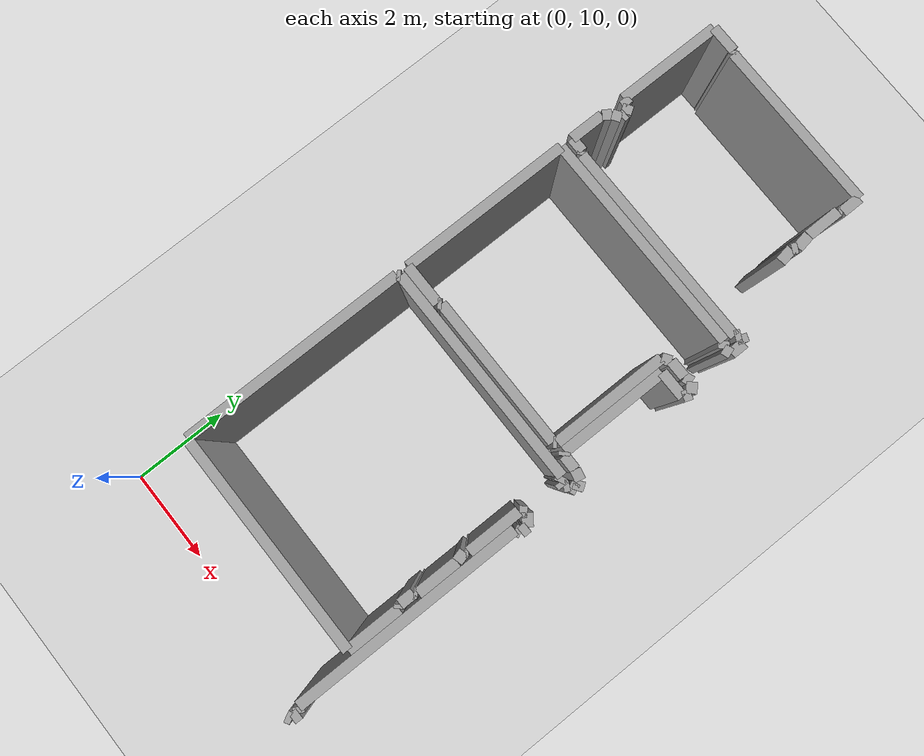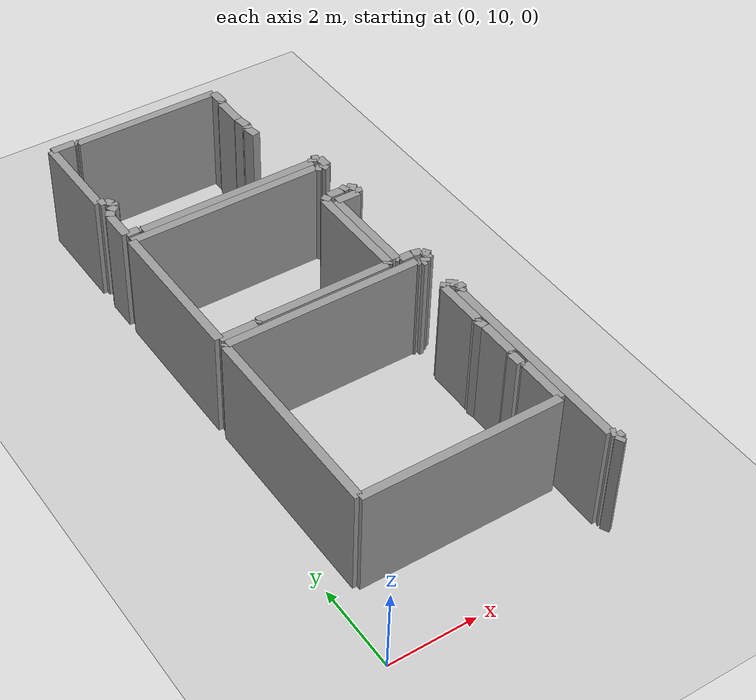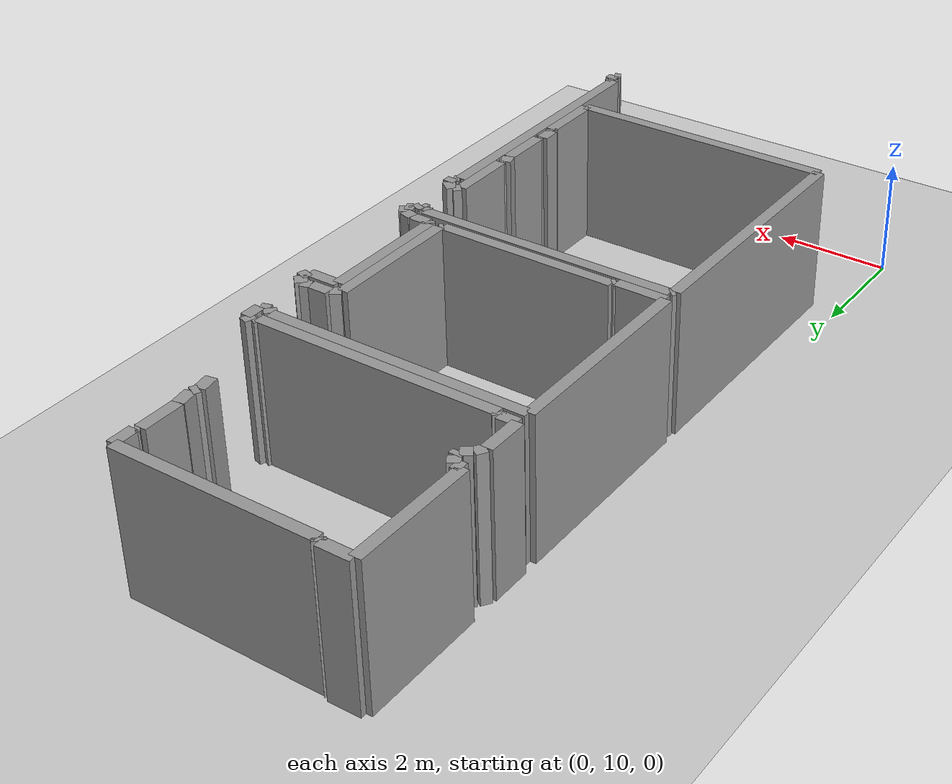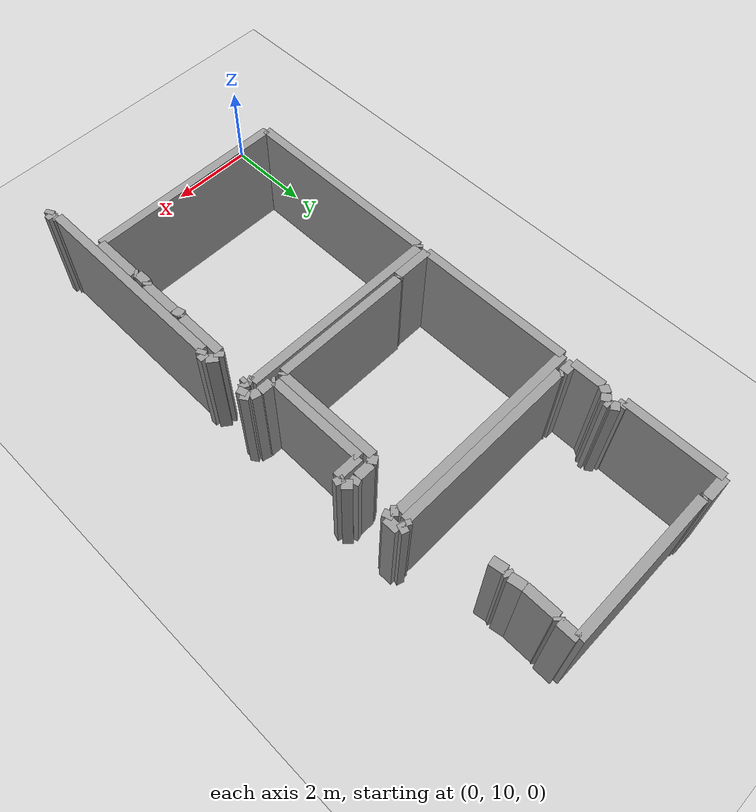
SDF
<sdf version="1.4">
 <world name="1_wall">
  <model name="ground_plane">
   <static>1</static>
   <link name="link">
    <collision name="collision">
     <geometry><plane><normal>0 0 1</normal><size>1000 1000</size></plane></geometry>
     <surface><friction><ode><mu>100</mu><mu2>50</mu2></ode></friction></surface>
    </collision>
    <visual name="visual">
     <cast_shadows>0</cast_shadows>
     <geometry><plane><normal>0 0 1</normal><size>10000 10000</size></plane></geometry>
     <material>
      <script><uri>file://media/materials/scripts/gazebo.material</uri><name>Gazebo/Grey</name></script>
     </material>
    </visual>
    <velocity_decay><linear>0</linear><angular>0</angular></velocity_decay>
   </link>
  </model>
  <model name="Wall_67">
   <static>1</static>
   <link name="Wall_67">
    <collision name="Wall_Collision_67">
     <geometry><box><size>0.11180339887498869 0.2 2.5</size></box></geometry>
     <pose>0 0 1.25 0 -0 0</pose>
    </collision>
    <visual name="Wall_Visual_67">
     <pose>0 0 1.25 0 -0 0</pose>
     <geometry><box><size>0.11180339887498869 0.2 2.5</size></box></geometry>
     <material>
      <script><uri>file://media/materials/scripts/gazebo.material</uri><name>Gazebo/Grey</name></script>
     </material>
    </visual>
    <velocity_decay><linear>0</linear><angular>0</angular></velocity_decay>
    <pose>5.3500000000000005 10.375 0 0 0 0.463647609000799</pose>
   </link>
  </model>
  <model name="Wall_68">
   <static>1</static>
   <link name="Wall_68">
    <collision name="Wall_Collision_68">
     <geometry><box><size>0.15000000000000036 0.2 2.5</size></box></geometry>
     <pose>0 0 1.25 0 -0 0</pose>
    </collision>
    <visual name="Wall_Visual_68">
     <pose>0 0 1.25 0 -0 0</pose>
     <geometry><box><size>0.15000000000000036 0.2 2.5</size></box></geometry>
     <material>
      <script><uri>file://media/materials/scripts/gazebo.material</uri><name>Gazebo/Grey</name></script>
     </material>
    </visual>
    <velocity_decay><linear>0</linear><angular>0</angular></velocity_decay>
    <pose>5.4 10.475000000000001 0 0 0 1.5707963267948966</pose>
   </link>
  </model>
  <model name="Wall_69">
   <static>1</static>
   <link name="Wall_69">
    <collision name="Wall_Collision_69">
     <geometry><box><size>0.11180339887498948 0.2 2.5</size></box></geometry>
     <pose>0 0 1.25 0 -0 0</pose>
    </collision>
    <visual name="Wall_Visual_69">
     <pose>0 0 1.25 0 -0 0</pose>
     <geometry><box><size>0.11180339887498948 0.2 2.5</size></box></geometry>
     <material>
      <script><uri>file://media/materials/scripts/gazebo.material</uri><name>Gazebo/Grey</name></script>
     </material>
    </visual>
    <velocity_decay><linear>0</linear><angular>0</angular></velocity_decay>
    <pose>5.3500000000000005 10.575000000000001 0 0 0 2.67794504458898</pose>
   </link>
  </model>
  <model name="Wall_70">
   <static>1</static>
   <link name="Wall_70">
    <collision name="Wall_Collision_70">
     <geometry><box><size>4.649999999999999 0.2 2.5</size></box></geometry>
     <pose>0 0 1.25 0 -0 0</pose>
    </collision>
    <visual name="Wall_Visual_70">
     <pose>0 0 1.25 0 -0 0</pose>
     <geometry><box><size>4.649999999999999 0.2 2.5</size></box></geometry>
     <material>
      <script><uri>file://media/materials/scripts/gazebo.material</uri><name>Gazebo/Grey</name></script>
     </material>
    </visual>
    <velocity_decay><linear>0</linear><angular>0</angular></velocity_decay>
    <pose>5.300000000000001 12.925 0 0 0 1.5707963267948966</pose>
   </link>
  </model>
  <model name="Wall_71">
   <static>1</static>
   <link name="Wall_71">
    <collision name="Wall_Collision_71">
     <geometry><box><size>0.11180339887498948 0.2 2.5</size></box></geometry>
     <pose>0 0 1.25 0 -0 0</pose>
    </collision>
    <visual name="Wall_Visual_71">
     <pose>0 0 1.25 0 -0 0</pose>
     <geometry><box><size>0.11180339887498948 0.2 2.5</size></box></geometry>
     <material>
      <script><uri>file://media/materials/scripts/gazebo.material</uri><name>Gazebo/Grey</name></script>
     </material>
    </visual>
    <velocity_decay><linear>0</linear><angular>0</angular></velocity_decay>
    <pose>5.3500000000000005 15.275 0 0 0 0.4636476090008132</pose>
   </link>
  </model>
  <model name="Wall_72">
   <static>1</static>
   <link name="Wall_72">
    <collision name="Wall_Collision_72">
     <geometry><box><size>0.15000000000000036 0.2 2.5</size></box></geometry>
     <pose>0 0 1.25 0 -0 0</pose>
    </collision>
    <visual name="Wall_Visual_72">
     <pose>0 0 1.25 0 -0 0</pose>
     <geometry><box><size>0.15000000000000036 0.2 2.5</size></box></geometry>
     <material>
      <script><uri>file://media/materials/scripts/gazebo.material</uri><name>Gazebo/Grey</name></script>
     </material>
    </visual>
    <velocity_decay><linear>0</linear><angular>0</angular></velocity_decay>
    <pose>5.4 15.375 0 0 0 1.5707963267948966</pose>
   </link>
  </model>
  <model name="Wall_73">
   <static>1</static>
   <link name="Wall_73">
    <collision name="Wall_Collision_73">
     <geometry><box><size>0.25000000000000033 0.2 2.5</size></box></geometry>
     <pose>0 0 1.25 0 -0 0</pose>
    </collision>
    <visual name="Wall_Visual_73">
     <pose>0 0 1.25 0 -0 0</pose>
     <geometry><box><size>0.25000000000000033 0.2 2.5</size></box></geometry>
     <material>
      <script><uri>file://media/materials/scripts/gazebo.material</uri><name>Gazebo/Grey</name></script>
     </material>
    </visual>
    <velocity_decay><linear>0</linear><angular>0</angular></velocity_decay>
    <pose>5.300000000000001 15.525000000000002 0 0 0 2.498091544796508</pose>
   </link>
  </model>
  <model name="Wall_74">
   <static>1</static>
   <link name="Wall_74">
    <collision name="Wall_Collision_74">
     <geometry><box><size>0.14142135623731025 0.2 2.5</size></box></geometry>
     <pose>0 0 1.25 0 -0 0</pose>
    </collision>
    <visual name="Wall_Visual_74">
     <pose>0 0 1.25 0 -0 0</pose>
     <geometry><box><size>0.14142135623731025 0.2 2.5</size></box></geometry>
     <material>
      <script><uri>file://media/materials/scripts/gazebo.material</uri><name>Gazebo/Grey</name></script>
     </material>
    </visual>
    <velocity_decay><linear>0</linear><angular>0</angular></velocity_decay>
    <pose>5.15 15.55 0 0 0 -2.356194490192336</pose>
   </link>
  </model>
  <model name="Wall_75">
   <static>1</static>
   <link name="Wall_75">
    <collision name="Wall_Collision_75">
     <geometry><box><size>1.0999999999999996 0.2 2.5</size></box></geometry>
     <pose>0 0 1.25 0 -0 0</pose>
    </collision>
    <visual name="Wall_Visual_75">
     <pose>0 0 1.25 0 -0 0</pose>
     <geometry><box><size>1.0999999999999996 0.2 2.5</size></box></geometry>
     <material>
      <script><uri>file://media/materials/scripts/gazebo.material</uri><name>Gazebo/Grey</name></script>
     </material>
    </visual>
    <velocity_decay><linear>0</linear><angular>0</angular></velocity_decay>
    <pose>5.1000000000000005 14.95 0 0 0 -1.5707963267948966</pose>
   </link>
  </model>
  <model name="Wall_76">
   <static>1</static>
   <link name="Wall_76">
    <collision name="Wall_Collision_76">
     <geometry><box><size>0.07071067811865388 0.2 2.5</size></box></geometry>
     <pose>0 0 1.25 0 -0 0</pose>
    </collision>
    <visual name="Wall_Visual_76">
     <pose>0 0 1.25 0 -0 0</pose>
     <geometry><box><size>0.07071067811865388 0.2 2.5</size></box></geometry>
     <material>
      <script><uri>file://media/materials/scripts/gazebo.material</uri><name>Gazebo/Grey</name></script>
     </material>
    </visual>
    <velocity_decay><linear>0</linear><angular>0</angular></velocity_decay>
    <pose>5.075000000000001 14.375 0 0 0 -2.3561944901923537</pose>
   </link>
  </model>
  <model name="Wall_77">
   <static>1</static>
   <link name="Wall_77">
    <collision name="Wall_Collision_77">
     <geometry><box><size>0.206155281280884 0.2 2.5</size></box></geometry>
     <pose>0 0 1.25 0 -0 0</pose>
    </collision>
    <visual name="Wall_Visual_77">
     <pose>0 0 1.25 0 -0 0</pose>
     <geometry><box><size>0.206155281280884 0.2 2.5</size></box></geometry>
     <material>
      <script><uri>file://media/materials/scripts/gazebo.material</uri><name>Gazebo/Grey</name></script>
     </material>
    </visual>
    <velocity_decay><linear>0</linear><angular>0</angular></velocity_decay>
    <pose>5.075000000000001 14.25 0 0 0 -1.3258176636680346</pose>
   </link>
  </model>
  <model name="Wall_78">
   <static>1</static>
   <link name="Wall_78">
    <collision name="Wall_Collision_78">
     <geometry><box><size>0.8499999999999996 0.2 2.5</size></box></geometry>
     <pose>0 0 1.25 0 -0 0</pose>
    </collision>
    <visual name="Wall_Visual_78">
     <pose>0 0 1.25 0 -0 0</pose>
     <geometry><box><size>0.8499999999999996 0.2 2.5</size></box></geometry>
     <material>
      <script><uri>file://media/materials/scripts/gazebo.material</uri><name>Gazebo/Grey</name></script>
     </material>
    </visual>
    <velocity_decay><linear>0</linear><angular>0</angular></velocity_decay>
    <pose>5.1000000000000005 13.725000000000001 0 0 0 -1.5707963267948966</pose>
   </link>
  </model>
  <model name="Wall_79">
   <static>1</static>
   <link name="Wall_79">
    <collision name="Wall_Collision_79">
     <geometry><box><size>0.07071067811865513 0.2 2.5</size></box></geometry>
     <pose>0 0 1.25 0 -0 0</pose>
    </collision>
    <visual name="Wall_Visual_79">
     <pose>0 0 1.25 0 -0 0</pose>
     <geometry><box><size>0.07071067811865513 0.2 2.5</size></box></geometry>
     <material>
      <script><uri>file://media/materials/scripts/gazebo.material</uri><name>Gazebo/Grey</name></script>
     </material>
    </visual>
    <velocity_decay><linear>0</linear><angular>0</angular></velocity_decay>
    <pose>5.075000000000001 13.275 0 0 0 -2.356194490192336</pose>
   </link>
  </model>
  <model name="Wall_80">
   <static>1</static>
   <link name="Wall_80">
    <collision name="Wall_Collision_80">
     <geometry><box><size>0.29999999999999893 0.2 2.5</size></box></geometry>
     <pose>0 0 1.25 0 -0 0</pose>
    </collision>
    <visual name="Wall_Visual_80">
     <pose>0 0 1.25 0 -0 0</pose>
     <geometry><box><size>0.29999999999999893 0.2 2.5</size></box></geometry>
     <material>
      <script><uri>file://media/materials/scripts/gazebo.material</uri><name>Gazebo/Grey</name></script>
     </material>
    </visual>
    <velocity_decay><linear>0</linear><angular>0</angular></velocity_decay>
    <pose>5.050000000000001 13.100000000000001 0 0 0 -1.5707963267948966</pose>
   </link>
  </model>
  <model name="Wall_81">
   <static>1</static>
   <link name="Wall_81">
    <collision name="Wall_Collision_81">
     <geometry><box><size>0.07071067811865513 0.2 2.5</size></box></geometry>
     <pose>0 0 1.25 0 -0 0</pose>
    </collision>
    <visual name="Wall_Visual_81">
     <pose>0 0 1.25 0 -0 0</pose>
     <geometry><box><size>0.07071067811865513 0.2 2.5</size></box></geometry>
     <material>
      <script><uri>file://media/materials/scripts/gazebo.material</uri><name>Gazebo/Grey</name></script>
     </material>
    </visual>
    <velocity_decay><linear>0</linear><angular>0</angular></velocity_decay>
    <pose>5.075000000000001 12.925 0 0 0 -0.7853981633974572</pose>
   </link>
  </model>
  <model name="Wall_82">
   <static>1</static>
   <link name="Wall_82">
    <collision name="Wall_Collision_82">
     <geometry><box><size>1.0999999999999996 0.2 2.5</size></box></geometry>
     <pose>0 0 1.25 0 -0 0</pose>
    </collision>
    <visual name="Wall_Visual_82">
     <pose>0 0 1.25 0 -0 0</pose>
     <geometry><box><size>1.0999999999999996 0.2 2.5</size></box></geometry>
     <material>
      <script><uri>file://media/materials/scripts/gazebo.material</uri><name>Gazebo/Grey</name></script>
     </material>
    </visual>
    <velocity_decay><linear>0</linear><angular>0</angular></velocity_decay>
    <pose>5.1000000000000005 12.350000000000001 0 0 0 -1.5707963267948966</pose>
   </link>
  </model>
  <model name="Wall_83">
   <static>1</static>
   <link name="Wall_83">
    <collision name="Wall_Collision_83">
     <geometry><box><size>4.550000000000001 0.2 2.5</size></box></geometry>
     <pose>0 0 1.25 0 -0 0</pose>
    </collision>
    <visual name="Wall_Visual_83">
     <pose>0 0 1.25 0 -0 0</pose>
     <geometry><box><size>4.550000000000001 0.2 2.5</size></box></geometry>
     <material>
      <script><uri>file://media/materials/scripts/gazebo.material</uri><name>Gazebo/Grey</name></script>
     </material>
    </visual>
    <velocity_decay><linear>0</linear><angular>0</angular></velocity_decay>
    <pose>2.825 11.8 0 0 0 3.141592653589793</pose>
   </link>
  </model>
  <model name="Wall_84">
   <static>1</static>
   <link name="Wall_84">
    <collision name="Wall_Collision_84">
     <geometry><box><size>4.600000000000001 0.2 2.5</size></box></geometry>
     <pose>0 0 1.25 0 -0 0</pose>
    </collision>
    <visual name="Wall_Visual_84">
     <pose>0 0 1.25 0 -0 0</pose>
     <geometry><box><size>4.600000000000001 0.2 2.5</size></box></geometry>
     <material>
      <script><uri>file://media/materials/scripts/gazebo.material</uri><name>Gazebo/Grey</name></script>
     </material>
    </visual>
    <velocity_decay><linear>0</linear><angular>0</angular></velocity_decay>
    <pose>0.55 14.100000000000001 0 0 0 1.5707963267948966</pose>
   </link>
  </model>
  <model name="Wall_85">
   <static>1</static>
   <link name="Wall_85">
    <collision name="Wall_Collision_85">
     <geometry><box><size>0.07071067811865277 0.2 2.5</size></box></geometry>
     <pose>0 0 1.25 0 -0 0</pose>
    </collision>
    <visual name="Wall_Visual_85">
     <pose>0 0 1.25 0 -0 0</pose>
     <geometry><box><size>0.07071067811865277 0.2 2.5</size></box></geometry>
     <material>
      <script><uri>file://media/materials/scripts/gazebo.material</uri><name>Gazebo/Grey</name></script>
     </material>
    </visual>
    <velocity_decay><linear>0</linear><angular>0</angular></velocity_decay>
    <pose>0.5750000000000001 16.425 0 0 0 0.7853981633974194</pose>
   </link>
  </model>
  <model name="Wall_86">
   <static>1</static>
   <link name="Wall_86">
    <collision name="Wall_Collision_86">
     <geometry><box><size>4.5 0.2 2.5</size></box></geometry>
     <pose>0 0 1.25 0 -0 0</pose>
    </collision>
    <visual name="Wall_Visual_86">
     <pose>0 0 1.25 0 -0 0</pose>
     <geometry><box><size>4.5 0.2 2.5</size></box></geometry>
     <material>
      <script><uri>file://media/materials/scripts/gazebo.material</uri><name>Gazebo/Grey</name></script>
     </material>
    </visual>
    <velocity_decay><linear>0</linear><angular>0</angular></velocity_decay>
    <pose>2.85 16.45 0 0 0 0.0</pose>
   </link>
  </model>
  <model name="Wall_87">
   <static>1</static>
   <link name="Wall_87">
    <collision name="Wall_Collision_87">
     <geometry><box><size>0.1118033988749875 0.2 2.5</size></box></geometry>
     <pose>0 0 1.25 0 -0 0</pose>
    </collision>
    <visual name="Wall_Visual_87">
     <pose>0 0 1.25 0 -0 0</pose>
     <geometry><box><size>0.1118033988749875 0.2 2.5</size></box></geometry>
     <material>
      <script><uri>file://media/materials/scripts/gazebo.material</uri><name>Gazebo/Grey</name></script>
     </material>
    </visual>
    <velocity_decay><linear>0</linear><angular>0</angular></velocity_decay>
    <pose>5.125 16.4 0 0 0 -1.1071487177940833</pose>
   </link>
  </model>
  <model name="Wall_88">
   <static>1</static>
   <link name="Wall_88">
    <collision name="Wall_Collision_88">
     <geometry><box><size>0.09999999999999964 0.2 2.5</size></box></geometry>
     <pose>0 0 1.25 0 -0 0</pose>
    </collision>
    <visual name="Wall_Visual_88">
     <pose>0 0 1.25 0 -0 0</pose>
     <geometry><box><size>0.09999999999999964 0.2 2.5</size></box></geometry>
     <material>
      <script><uri>file://media/materials/scripts/gazebo.material</uri><name>Gazebo/Grey</name></script>
     </material>
    </visual>
    <velocity_decay><linear>0</linear><angular>0</angular></velocity_decay>
    <pose>5.2 16.35 0 0 0 0.0</pose>
   </link>
  </model>
  <model name="Wall_89">
   <static>1</static>
   <link name="Wall_89">
    <collision name="Wall_Collision_89">
     <geometry><box><size>0.1118033988749879 0.2 2.5</size></box></geometry>
     <pose>0 0 1.25 0 -0 0</pose>
    </collision>
    <visual name="Wall_Visual_89">
     <pose>0 0 1.25 0 -0 0</pose>
     <geometry><box><size>0.1118033988749879 0.2 2.5</size></box></geometry>
     <material>
      <script><uri>file://media/materials/scripts/gazebo.material</uri><name>Gazebo/Grey</name></script>
     </material>
    </visual>
    <velocity_decay><linear>0</linear><angular>0</angular></velocity_decay>
    <pose>5.275 16.4 0 0 0 1.1071487177940762</pose>
   </link>
  </model>
  <model name="Wall_90">
   <static>1</static>
   <link name="Wall_90">
    <collision name="Wall_Collision_90">
     <geometry><box><size>0.1581138830084187 0.2 2.5</size></box></geometry>
     <pose>0 0 1.25 0 -0 0</pose>
    </collision>
    <visual name="Wall_Visual_90">
     <pose>0 0 1.25 0 -0 0</pose>
     <geometry><box><size>0.1581138830084187 0.2 2.5</size></box></geometry>
     <material>
      <script><uri>file://media/materials/scripts/gazebo.material</uri><name>Gazebo/Grey</name></script>
     </material>
    </visual>
    <velocity_decay><linear>0</linear><angular>0</angular></velocity_decay>
    <pose>5.375 16.475 0 0 0 0.3217505543966475</pose>
   </link>
  </model>
  <model name="Wall_91">
   <static>1</static>
   <link name="Wall_91">
    <collision name="Wall_Collision_91">
     <geometry><box><size>0.18027756377320103 0.2 2.5</size></box></geometry>
     <pose>0 0 1.25 0 -0 0</pose>
    </collision>
    <visual name="Wall_Visual_91">
     <pose>0 0 1.25 0 -0 0</pose>
     <geometry><box><size>0.18027756377320103 0.2 2.5</size></box></geometry>
     <material>
      <script><uri>file://media/materials/scripts/gazebo.material</uri><name>Gazebo/Grey</name></script>
     </material>
    </visual>
    <velocity_decay><linear>0</linear><angular>0</angular></velocity_decay>
    <pose>5.4 16.575000000000003 0 0 0 2.158798930342456</pose>
   </link>
  </model>
  <model name="Wall_92">
   <static>1</static>
   <link name="Wall_92">
    <collision name="Wall_Collision_92">
     <geometry><box><size>0.2061552812808825 0.2 2.5</size></box></geometry>
     <pose>0 0 1.25 0 -0 0</pose>
    </collision>
    <visual name="Wall_Visual_92">
     <pose>0 0 1.25 0 -0 0</pose>
     <geometry><box><size>0.2061552812808825 0.2 2.5</size></box></geometry>
     <material>
      <script><uri>file://media/materials/scripts/gazebo.material</uri><name>Gazebo/Grey</name></script>
     </material>
    </visual>
    <velocity_decay><linear>0</linear><angular>0</angular></velocity_decay>
    <pose>5.25 16.675 0 0 0 2.8966139904629427</pose>
   </link>
  </model>
  <model name="Wall_93">
   <static>1</static>
   <link name="Wall_93">
    <collision name="Wall_Collision_93">
     <geometry><box><size>0.2999999999999998 0.2 2.5</size></box></geometry>
     <pose>0 0 1.25 0 -0 0</pose>
    </collision>
    <visual name="Wall_Visual_93">
     <pose>0 0 1.25 0 -0 0</pose>
     <geometry><box><size>0.2999999999999998 0.2 2.5</size></box></geometry>
     <material>
      <script><uri>file://media/materials/scripts/gazebo.material</uri><name>Gazebo/Grey</name></script>
     </material>
    </visual>
    <velocity_decay><linear>0</linear><angular>0</angular></velocity_decay>
    <pose>5.0 16.7 0 0 0 3.141592653589793</pose>
   </link>
  </model>
  <model name="Wall_94">
   <static>1</static>
   <link name="Wall_94">
    <collision name="Wall_Collision_94">
     <geometry><box><size>0.07071067811865513 0.2 2.5</size></box></geometry>
     <pose>0 0 1.25 0 -0 0</pose>
    </collision>
    <visual name="Wall_Visual_94">
     <pose>0 0 1.25 0 -0 0</pose>
     <geometry><box><size>0.07071067811865513 0.2 2.5</size></box></geometry>
     <material>
      <script><uri>file://media/materials/scripts/gazebo.material</uri><name>Gazebo/Grey</name></script>
     </material>
    </visual>
    <velocity_decay><linear>0</linear><angular>0</angular></velocity_decay>
    <pose>4.825000000000001 16.725 0 0 0 2.356194490192336</pose>
   </link>
  </model>
  <model name="Wall_95">
   <static>1</static>
   <link name="Wall_95">
    <collision name="Wall_Collision_95">
     <geometry><box><size>2.1999999999999993 0.2 2.5</size></box></geometry>
     <pose>0 0 1.25 0 -0 0</pose>
    </collision>
    <visual name="Wall_Visual_95">
     <pose>0 0 1.25 0 -0 0</pose>
     <geometry><box><size>2.1999999999999993 0.2 2.5</size></box></geometry>
     <material>
      <script><uri>file://media/materials/scripts/gazebo.material</uri><name>Gazebo/Grey</name></script>
     </material>
    </visual>
    <velocity_decay><linear>0</linear><angular>0</angular></velocity_decay>
    <pose>4.800000000000001 17.85 0 0 0 1.5707963267948966</pose>
   </link>
  </model>
  <model name="Wall_96">
   <static>1</static>
   <link name="Wall_96">
    <collision name="Wall_Collision_96">
     <geometry><box><size>0.5499999999999998 0.2 2.5</size></box></geometry>
     <pose>0 0 1.25 0 -0 0</pose>
    </collision>
    <visual name="Wall_Visual_96">
     <pose>0 0 1.25 0 -0 0</pose>
     <geometry><box><size>0.5499999999999998 0.2 2.5</size></box></geometry>
     <material>
      <script><uri>file://media/materials/scripts/gazebo.material</uri><name>Gazebo/Grey</name></script>
     </material>
    </visual>
    <velocity_decay><linear>0</linear><angular>0</angular></velocity_decay>
    <pose>5.075000000000001 18.95 0 0 0 0.0</pose>
   </link>
  </model>
  <model name="Wall_97">
   <static>1</static>
   <link name="Wall_97">
    <collision name="Wall_Collision_97">
     <geometry><box><size>0.15811388300842094 0.2 2.5</size></box></geometry>
     <pose>0 0 1.25 0 -0 0</pose>
    </collision>
    <visual name="Wall_Visual_97">
     <pose>0 0 1.25 0 -0 0</pose>
     <geometry><box><size>0.15811388300842094 0.2 2.5</size></box></geometry>
     <material>
      <script><uri>file://media/materials/scripts/gazebo.material</uri><name>Gazebo/Grey</name></script>
     </material>
    </visual>
    <velocity_decay><linear>0</linear><angular>0</angular></velocity_decay>
    <pose>5.375 19.025 0 0 0 1.2490457723982598</pose>
   </link>
  </model>
  <model name="Wall_98">
   <static>1</static>
   <link name="Wall_98">
    <collision name="Wall_Collision_98">
     <geometry><box><size>0.2121320343559635 0.2 2.5</size></box></geometry>
     <pose>0 0 1.25 0 -0 0</pose>
    </collision>
    <visual name="Wall_Visual_98">
     <pose>0 0 1.25 0 -0 0</pose>
     <geometry><box><size>0.2121320343559635 0.2 2.5</size></box></geometry>
     <material>
      <script><uri>file://media/materials/scripts/gazebo.material</uri><name>Gazebo/Grey</name></script>
     </material>
    </visual>
    <velocity_decay><linear>0</linear><angular>0</angular></velocity_decay>
    <pose>5.325 19.175 0 0 0 2.356194490192351</pose>
   </link>
  </model>
  <model name="Wall_99">
   <static>1</static>
   <link name="Wall_99">
    <collision name="Wall_Collision_99">
     <geometry><box><size>0.15811388300841756 0.2 2.5</size></box></geometry>
     <pose>0 0 1.25 0 -0 0</pose>
    </collision>
    <visual name="Wall_Visual_99">
     <pose>0 0 1.25 0 -0 0</pose>
     <geometry><box><size>0.15811388300841756 0.2 2.5</size></box></geometry>
     <material>
      <script><uri>file://media/materials/scripts/gazebo.material</uri><name>Gazebo/Grey</name></script>
     </material>
    </visual>
    <velocity_decay><linear>0</linear><angular>0</angular></velocity_decay>
    <pose>5.175000000000001 19.225 0 0 0 -2.819842099193167</pose>
   </link>
  </model>
  <model name="Wall_100">
   <static>1</static>
   <link name="Wall_100">
    <collision name="Wall_Collision_100">
     <geometry><box><size>0.35000000000000053 0.2 2.5</size></box></geometry>
     <pose>0 0 1.25 0 -0 0</pose>
    </collision>
    <visual name="Wall_Visual_100">
     <pose>0 0 1.25 0 -0 0</pose>
     <geometry><box><size>0.35000000000000053 0.2 2.5</size></box></geometry>
     <material>
      <script><uri>file://media/materials/scripts/gazebo.material</uri><name>Gazebo/Grey</name></script>
     </material>
    </visual>
    <velocity_decay><linear>0</linear><angular>0</angular></velocity_decay>
    <pose>4.925000000000001 19.200000000000003 0 0 0 3.141592653589793</pose>
   </link>
  </model>
  <model name="Wall_101">
   <static>1</static>
   <link name="Wall_101">
    <collision name="Wall_Collision_101">
     <geometry><box><size>0.1802775637731998 0.2 2.5</size></box></geometry>
     <pose>0 0 1.25 0 -0 0</pose>
    </collision>
    <visual name="Wall_Visual_101">
     <pose>0 0 1.25 0 -0 0</pose>
     <geometry><box><size>0.1802775637731998 0.2 2.5</size></box></geometry>
     <material>
      <script><uri>file://media/materials/scripts/gazebo.material</uri><name>Gazebo/Grey</name></script>
     </material>
    </visual>
    <velocity_decay><linear>0</linear><angular>0</angular></velocity_decay>
    <pose>4.675000000000001 19.150000000000002 0 0 0 -2.5535900500422173</pose>
   </link>
  </model>
  <model name="Wall_102">
   <static>1</static>
   <link name="Wall_102">
    <collision name="Wall_Collision_102">
     <geometry><box><size>2.3500000000000014 0.2 2.5</size></box></geometry>
     <pose>0 0 1.25 0 -0 0</pose>
    </collision>
    <visual name="Wall_Visual_102">
     <pose>0 0 1.25 0 -0 0</pose>
     <geometry><box><size>2.3500000000000014 0.2 2.5</size></box></geometry>
     <material>
      <script><uri>file://media/materials/scripts/gazebo.material</uri><name>Gazebo/Grey</name></script>
     </material>
    </visual>
    <velocity_decay><linear>0</linear><angular>0</angular></velocity_decay>
    <pose>4.6000000000000005 17.925 0 0 0 -1.5707963267948966</pose>
   </link>
  </model>
  <model name="Wall_103">
   <static>1</static>
   <link name="Wall_103">
    <collision name="Wall_Collision_103">
     <geometry><box><size>0.07071067811865576 0.2 2.5</size></box></geometry>
     <pose>0 0 1.25 0 -0 0</pose>
    </collision>
    <visual name="Wall_Visual_103">
     <pose>0 0 1.25 0 -0 0</pose>
     <geometry><box><size>0.07071067811865576 0.2 2.5</size></box></geometry>
     <material>
      <script><uri>file://media/materials/scripts/gazebo.material</uri><name>Gazebo/Grey</name></script>
     </material>
    </visual>
    <velocity_decay><linear>0</linear><angular>0</angular></velocity_decay>
    <pose>4.575 16.725 0 0 0 -2.356194490192345</pose>
   </link>
  </model>
  <model name="Wall_104">
   <static>1</static>
   <link name="Wall_104">
    <collision name="Wall_Collision_104">
     <geometry><box><size>3.0999999999999996 0.2 2.5</size></box></geometry>
     <pose>0 0 1.25 0 -0 0</pose>
    </collision>
    <visual name="Wall_Visual_104">
     <pose>0 0 1.25 0 -0 0</pose>
     <geometry><box><size>3.0999999999999996 0.2 2.5</size></box></geometry>
     <material>
      <script><uri>file://media/materials/scripts/gazebo.material</uri><name>Gazebo/Grey</name></script>
     </material>
    </visual>
    <velocity_decay><linear>0</linear><angular>0</angular></velocity_decay>
    <pose>3.0 16.7 0 0 0 3.141592653589793</pose>
   </link>
  </model>
  <model name="Wall_105">
   <static>1</static>
   <link name="Wall_105">
    <collision name="Wall_Collision_105">
     <geometry><box><size>0.07071067811865277 0.2 2.5</size></box></geometry>
     <pose>0 0 1.25 0 -0 0</pose>
    </collision>
    <visual name="Wall_Visual_105">
     <pose>0 0 1.25 0 -0 0</pose>
     <geometry><box><size>0.07071067811865277 0.2 2.5</size></box></geometry>
     <material>
      <script><uri>file://media/materials/scripts/gazebo.material</uri><name>Gazebo/Grey</name></script>
     </material>
    </visual>
    <velocity_decay><linear>0</linear><angular>0</angular></velocity_decay>
    <pose>1.4250000000000003 16.675 0 0 0 -2.3561944901923737</pose>
   </link>
  </model>
  <model name="Wall_106">
   <static>1</static>
   <link name="Wall_106">
    <collision name="Wall_Collision_106">
     <geometry><box><size>0.8500000000000001 0.2 2.5</size></box></geometry>
     <pose>0 0 1.25 0 -0 0</pose>
    </collision>
    <visual name="Wall_Visual_106">
     <pose>0 0 1.25 0 -0 0</pose>
     <geometry><box><size>0.8500000000000001 0.2 2.5</size></box></geometry>
     <material>
      <script><uri>file://media/materials/scripts/gazebo.material</uri><name>Gazebo/Grey</name></script>
     </material>
    </visual>
    <velocity_decay><linear>0</linear><angular>0</angular></velocity_decay>
    <pose>0.9750000000000001 16.650000000000002 0 0 0 3.141592653589793</pose>
   </link>
  </model>
  <model name="Wall_107">
   <static>1</static>
   <link name="Wall_107">
    <collision name="Wall_Collision_107">
     <geometry><box><size>3.5 0.2 2.5</size></box></geometry>
     <pose>0 0 1.25 0 -0 0</pose>
    </collision>
    <visual name="Wall_Visual_107">
     <pose>0 0 1.25 0 -0 0</pose>
     <geometry><box><size>3.5 0.2 2.5</size></box></geometry>
     <material>
      <script><uri>file://media/materials/scripts/gazebo.material</uri><name>Gazebo/Grey</name></script>
     </material>
    </visual>
    <velocity_decay><linear>0</linear><angular>0</angular></velocity_decay>
    <pose>0.55 18.400000000000002 0 0 0 1.5707963267948966</pose>
   </link>
  </model>
  <model name="Wall_108">
   <static>1</static>
   <link name="Wall_108">
    <collision name="Wall_Collision_108">
     <geometry><box><size>4.500000000000001 0.2 2.5</size></box></geometry>
     <pose>0 0 1.25 0 -0 0</pose>
    </collision>
    <visual name="Wall_Visual_108">
     <pose>0 0 1.25 0 -0 0</pose>
     <geometry><box><size>4.500000000000001 0.2 2.5</size></box></geometry>
     <material>
      <script><uri>file://media/materials/scripts/gazebo.material</uri><name>Gazebo/Grey</name></script>
     </material>
    </visual>
    <velocity_decay><linear>0</linear><angular>0</angular></velocity_decay>
    <pose>2.8000000000000007 20.150000000000002 0 0 0 0.0</pose>
   </link>
  </model>
  <model name="Wall_109">
   <static>1</static>
   <link name="Wall_109">
    <collision name="Wall_Collision_109">
     <geometry><box><size>0.14142135623731025 0.2 2.5</size></box></geometry>
     <pose>0 0 1.25 0 -0 0</pose>
    </collision>
    <visual name="Wall_Visual_109">
     <pose>0 0 1.25 0 -0 0</pose>
     <geometry><box><size>0.14142135623731025 0.2 2.5</size></box></geometry>
     <material>
      <script><uri>file://media/materials/scripts/gazebo.material</uri><name>Gazebo/Grey</name></script>
     </material>
    </visual>
    <velocity_decay><linear>0</linear><angular>0</angular></velocity_decay>
    <pose>5.1000000000000005 20.1 0 0 0 -0.7853981633974572</pose>
   </link>
  </model>
  <model name="Wall_110">
   <static>1</static>
   <link name="Wall_110">
    <collision name="Wall_Collision_110">
     <geometry><box><size>0.15811388300841953 0.2 2.5</size></box></geometry>
     <pose>0 0 1.25 0 -0 0</pose>
    </collision>
    <visual name="Wall_Visual_110">
     <pose>0 0 1.25 0 -0 0</pose>
     <geometry><box><size>0.15811388300841953 0.2 2.5</size></box></geometry>
     <material>
      <script><uri>file://media/materials/scripts/gazebo.material</uri><name>Gazebo/Grey</name></script>
     </material>
    </visual>
    <velocity_decay><linear>0</linear><angular>0</angular></velocity_decay>
    <pose>5.2250000000000005 20.075000000000003 0 0 0 0.32175055439664574</pose>
   </link>
  </model>
  <model name="Wall_111">
   <static>1</static>
   <link name="Wall_111">
    <collision name="Wall_Collision_111">
     <geometry><box><size>0.3000000000000007 0.2 2.5</size></box></geometry>
     <pose>0 0 1.25 0 -0 0</pose>
    </collision>
    <visual name="Wall_Visual_111">
     <pose>0 0 1.25 0 -0 0</pose>
     <geometry><box><size>0.3000000000000007 0.2 2.5</size></box></geometry>
     <material>
      <script><uri>file://media/materials/scripts/gazebo.material</uri><name>Gazebo/Grey</name></script>
     </material>
    </visual>
    <velocity_decay><linear>0</linear><angular>0</angular></velocity_decay>
    <pose>5.300000000000001 20.25 0 0 0 1.5707963267948966</pose>
   </link>
  </model>
  <model name="Wall_112">
   <static>1</static>
   <link name="Wall_112">
    <collision name="Wall_Collision_112">
     <geometry><box><size>0.15811388300841953 0.2 2.5</size></box></geometry>
     <pose>0 0 1.25 0 -0 0</pose>
    </collision>
    <visual name="Wall_Visual_112">
     <pose>0 0 1.25 0 -0 0</pose>
     <geometry><box><size>0.15811388300841953 0.2 2.5</size></box></geometry>
     <material>
      <script><uri>file://media/materials/scripts/gazebo.material</uri><name>Gazebo/Grey</name></script>
     </material>
    </visual>
    <velocity_decay><linear>0</linear><angular>0</angular></velocity_decay>
    <pose>5.2250000000000005 20.425000000000004 0 0 0 2.8198420991931474</pose>
   </link>
  </model>
  <model name="Wall_113">
   <static>1</static>
   <link name="Wall_113">
    <collision name="Wall_Collision_113">
     <geometry><box><size>0.11180339887499069 0.2 2.5</size></box></geometry>
     <pose>0 0 1.25 0 -0 0</pose>
    </collision>
    <visual name="Wall_Visual_113">
     <pose>0 0 1.25 0 -0 0</pose>
     <geometry><box><size>0.11180339887499069 0.2 2.5</size></box></geometry>
     <material>
      <script><uri>file://media/materials/scripts/gazebo.material</uri><name>Gazebo/Grey</name></script>
     </material>
    </visual>
    <velocity_decay><linear>0</linear><angular>0</angular></velocity_decay>
    <pose>5.125 20.400000000000002 0 0 0 -2.0344439357956956</pose>
   </link>
  </model>
  <model name="Wall_114">
   <static>1</static>
   <link name="Wall_114">
    <collision name="Wall_Collision_114">
     <geometry><box><size>4.2 0.2 2.5</size></box></geometry>
     <pose>0 0 1.25 0 -0 0</pose>
    </collision>
    <visual name="Wall_Visual_114">
     <pose>0 0 1.25 0 -0 0</pose>
     <geometry><box><size>4.2 0.2 2.5</size></box></geometry>
     <material>
      <script><uri>file://media/materials/scripts/gazebo.material</uri><name>Gazebo/Grey</name></script>
     </material>
    </visual>
    <velocity_decay><linear>0</linear><angular>0</angular></velocity_decay>
    <pose>3.0000000000000004 20.35 0 0 0 3.141592653589793</pose>
   </link>
  </model>
  <model name="Wall_115">
   <static>1</static>
   <link name="Wall_115">
    <collision name="Wall_Collision_115">
     <geometry><box><size>0.07071067811865521 0.2 2.5</size></box></geometry>
     <pose>0 0 1.25 0 -0 0</pose>
    </collision>
    <visual name="Wall_Visual_115">
     <pose>0 0 1.25 0 -0 0</pose>
     <geometry><box><size>0.07071067811865521 0.2 2.5</size></box></geometry>
     <material>
      <script><uri>file://media/materials/scripts/gazebo.material</uri><name>Gazebo/Grey</name></script>
     </material>
    </visual>
    <velocity_decay><linear>0</linear><angular>0</angular></velocity_decay>
    <pose>0.875 20.375 0 0 0 2.3561944901923373</pose>
   </link>
  </model>
  <model name="Wall_116">
   <static>1</static>
   <link name="Wall_116">
    <collision name="Wall_Collision_116">
     <geometry><box><size>0.30000000000000004 0.2 2.5</size></box></geometry>
     <pose>0 0 1.25 0 -0 0</pose>
    </collision>
    <visual name="Wall_Visual_116">
     <pose>0 0 1.25 0 -0 0</pose>
     <geometry><box><size>0.30000000000000004 0.2 2.5</size></box></geometry>
     <material>
      <script><uri>file://media/materials/scripts/gazebo.material</uri><name>Gazebo/Grey</name></script>
     </material>
    </visual>
    <velocity_decay><linear>0</linear><angular>0</angular></velocity_decay>
    <pose>0.7000000000000001 20.400000000000002 0 0 0 3.141592653589793</pose>
   </link>
  </model>
  <model name="Wall_117">
   <static>1</static>
   <link name="Wall_117">
    <collision name="Wall_Collision_117">
     <geometry><box><size>0.6999999999999993 0.2 2.5</size></box></geometry>
     <pose>0 0 1.25 0 -0 0</pose>
    </collision>
    <visual name="Wall_Visual_117">
     <pose>0 0 1.25 0 -0 0</pose>
     <geometry><box><size>0.6999999999999993 0.2 2.5</size></box></geometry>
     <material>
      <script><uri>file://media/materials/scripts/gazebo.material</uri><name>Gazebo/Grey</name></script>
     </material>
    </visual>
    <velocity_decay><linear>0</linear><angular>0</angular></velocity_decay>
    <pose>0.55 20.75 0 0 0 1.5707963267948966</pose>
   </link>
  </model>
  <model name="Wall_118">
   <static>1</static>
   <link name="Wall_118">
    <collision name="Wall_Collision_118">
     <geometry><box><size>0.18027756377319828 0.2 2.5</size></box></geometry>
     <pose>0 0 1.25 0 -0 0</pose>
    </collision>
    <visual name="Wall_Visual_118">
     <pose>0 0 1.25 0 -0 0</pose>
     <geometry><box><size>0.18027756377319828 0.2 2.5</size></box></geometry>
     <material>
      <script><uri>file://media/materials/scripts/gazebo.material</uri><name>Gazebo/Grey</name></script>
     </material>
    </visual>
    <velocity_decay><linear>0</linear><angular>0</angular></velocity_decay>
    <pose>0.6000000000000001 21.175 0 0 0 0.9827937232473248</pose>
   </link>
  </model>
  <model name="Wall_119">
   <static>1</static>
   <link name="Wall_119">
    <collision name="Wall_Collision_119">
     <geometry><box><size>0.18027756377320028 0.2 2.5</size></box></geometry>
     <pose>0 0 1.25 0 -0 0</pose>
    </collision>
    <visual name="Wall_Visual_119">
     <pose>0 0 1.25 0 -0 0</pose>
     <geometry><box><size>0.18027756377320028 0.2 2.5</size></box></geometry>
     <material>
      <script><uri>file://media/materials/scripts/gazebo.material</uri><name>Gazebo/Grey</name></script>
     </material>
    </visual>
    <velocity_decay><linear>0</linear><angular>0</angular></velocity_decay>
    <pose>0.7250000000000001 21.3 0 0 0 0.588002603547574</pose>
   </link>
  </model>
  <model name="Wall_120">
   <static>1</static>
   <link name="Wall_120">
    <collision name="Wall_Collision_120">
     <geometry><box><size>0.10000000000000142 0.2 2.5</size></box></geometry>
     <pose>0 0 1.25 0 -0 0</pose>
    </collision>
    <visual name="Wall_Visual_120">
     <pose>0 0 1.25 0 -0 0</pose>
     <geometry><box><size>0.10000000000000142 0.2 2.5</size></box></geometry>
     <material>
      <script><uri>file://media/materials/scripts/gazebo.material</uri><name>Gazebo/Grey</name></script>
     </material>
    </visual>
    <velocity_decay><linear>0</linear><angular>0</angular></velocity_decay>
    <pose>0.8 21.400000000000002 0 0 0 1.5707963267948966</pose>
   </link>
  </model>
  <model name="Wall_121">
   <static>1</static>
   <link name="Wall_121">
    <collision name="Wall_Collision_121">
     <geometry><box><size>0.18027756377319828 0.2 2.5</size></box></geometry>
     <pose>0 0 1.25 0 -0 0</pose>
    </collision>
    <visual name="Wall_Visual_121">
     <pose>0 0 1.25 0 -0 0</pose>
     <geometry><box><size>0.18027756377319828 0.2 2.5</size></box></geometry>
     <material>
      <script><uri>file://media/materials/scripts/gazebo.material</uri><name>Gazebo/Grey</name></script>
     </material>
    </visual>
    <velocity_decay><linear>0</linear><angular>0</angular></velocity_decay>
    <pose>0.75 21.525000000000002 0 0 0 2.1587989303424684</pose>
   </link>
  </model>
  <model name="Wall_122">
   <static>1</static>
   <link name="Wall_122">
    <collision name="Wall_Collision_122">
     <geometry><box><size>0.15000000000000002 0.2 2.5</size></box></geometry>
     <pose>0 0 1.25 0 -0 0</pose>
    </collision>
    <visual name="Wall_Visual_122">
     <pose>0 0 1.25 0 -0 0</pose>
     <geometry><box><size>0.15000000000000002 0.2 2.5</size></box></geometry>
     <material>
      <script><uri>file://media/materials/scripts/gazebo.material</uri><name>Gazebo/Grey</name></script>
     </material>
    </visual>
    <velocity_decay><linear>0</linear><angular>0</angular></velocity_decay>
    <pose>0.625 21.6 0 0 0 3.141592653589793</pose>
   </link>
  </model>
  <model name="Wall_123">
   <static>1</static>
   <link name="Wall_123">
    <collision name="Wall_Collision_123">
     <geometry><box><size>2.1499999999999986 0.2 2.5</size></box></geometry>
     <pose>0 0 1.25 0 -0 0</pose>
    </collision>
    <visual name="Wall_Visual_123">
     <pose>0 0 1.25 0 -0 0</pose>
     <geometry><box><size>2.1499999999999986 0.2 2.5</size></box></geometry>
     <material>
      <script><uri>file://media/materials/scripts/gazebo.material</uri><name>Gazebo/Grey</name></script>
     </material>
    </visual>
    <velocity_decay><linear>0</linear><angular>0</angular></velocity_decay>
    <pose>0.55 22.675 0 0 0 1.5707963267948966</pose>
   </link>
  </model>
  <model name="Wall_124">
   <static>1</static>
   <link name="Wall_124">
    <collision name="Wall_Collision_124">
     <geometry><box><size>0.55 0.2 2.5</size></box></geometry>
     <pose>0 0 1.25 0 -0 0</pose>
    </collision>
    <visual name="Wall_Visual_124">
     <pose>0 0 1.25 0 -0 0</pose>
     <geometry><box><size>0.55 0.2 2.5</size></box></geometry>
     <material>
      <script><uri>file://media/materials/scripts/gazebo.material</uri><name>Gazebo/Grey</name></script>
     </material>
    </visual>
    <velocity_decay><linear>0</linear><angular>0</angular></velocity_decay>
    <pose>0.8250000000000001 23.75 0 0 0 0.0</pose>
   </link>
  </model>
  <model name="Wall_125">
   <static>1</static>
   <link name="Wall_125">
    <collision name="Wall_Collision_125">
     <geometry><box><size>0.07071067811865277 0.2 2.5</size></box></geometry>
     <pose>0 0 1.25 0 -0 0</pose>
    </collision>
    <visual name="Wall_Visual_125">
     <pose>0 0 1.25 0 -0 0</pose>
     <geometry><box><size>0.07071067811865277 0.2 2.5</size></box></geometry>
     <material>
      <script><uri>file://media/materials/scripts/gazebo.material</uri><name>Gazebo/Grey</name></script>
     </material>
    </visual>
    <velocity_decay><linear>0</linear><angular>0</angular></velocity_decay>
    <pose>1.125 23.725 0 0 0 -0.7853981633974194</pose>
   </link>
  </model>
  <model name="Wall_126">
   <static>1</static>
   <link name="Wall_126">
    <collision name="Wall_Collision_126">
     <geometry><box><size>3.45 0.2 2.5</size></box></geometry>
     <pose>0 0 1.25 0 -0 0</pose>
    </collision>
    <visual name="Wall_Visual_126">
     <pose>0 0 1.25 0 -0 0</pose>
     <geometry><box><size>3.45 0.2 2.5</size></box></geometry>
     <material>
      <script><uri>file://media/materials/scripts/gazebo.material</uri><name>Gazebo/Grey</name></script>
     </material>
    </visual>
    <velocity_decay><linear>0</linear><angular>0</angular></velocity_decay>
    <pose>2.875 23.700000000000003 0 0 0 0.0</pose>
   </link>
  </model>
  <model name="Wall_127">
   <static>1</static>
   <link name="Wall_127">
    <collision name="Wall_Collision_127">
     <geometry><box><size>0.40000000000000213 0.2 2.5</size></box></geometry>
     <pose>0 0 1.25 0 -0 0</pose>
    </collision>
    <visual name="Wall_Visual_127">
     <pose>0 0 1.25 0 -0 0</pose>
     <geometry><box><size>0.40000000000000213 0.2 2.5</size></box></geometry>
     <material>
      <script><uri>file://media/materials/scripts/gazebo.material</uri><name>Gazebo/Grey</name></script>
     </material>
    </visual>
    <velocity_decay><linear>0</linear><angular>0</angular></velocity_decay>
    <pose>4.6000000000000005 23.5 0 0 0 -1.5707963267948966</pose>
   </link>
  </model>
  <model name="Wall_128">
   <static>1</static>
   <link name="Wall_128">
    <collision name="Wall_Collision_128">
     <geometry><box><size>0.07071067811865576 0.2 2.5</size></box></geometry>
     <pose>0 0 1.25 0 -0 0</pose>
    </collision>
    <visual name="Wall_Visual_128">
     <pose>0 0 1.25 0 -0 0</pose>
     <geometry><box><size>0.07071067811865576 0.2 2.5</size></box></geometry>
     <material>
      <script><uri>file://media/materials/scripts/gazebo.material</uri><name>Gazebo/Grey</name></script>
     </material>
    </visual>
    <velocity_decay><linear>0</linear><angular>0</angular></velocity_decay>
    <pose>4.575 23.275 0 0 0 -2.356194490192345</pose>
   </link>
  </model>
  <model name="Wall_129">
   <static>1</static>
   <link name="Wall_129">
    <collision name="Wall_Collision_129">
     <geometry><box><size>0.6999999999999993 0.2 2.5</size></box></geometry>
     <pose>0 0 1.25 0 -0 0</pose>
    </collision>
    <visual name="Wall_Visual_129">
     <pose>0 0 1.25 0 -0 0</pose>
     <geometry><box><size>0.6999999999999993 0.2 2.5</size></box></geometry>
     <material>
      <script><uri>file://media/materials/scripts/gazebo.material</uri><name>Gazebo/Grey</name></script>
     </material>
    </visual>
    <velocity_decay><linear>0</linear><angular>0</angular></velocity_decay>
    <pose>4.55 22.9 0 0 0 -1.5707963267948966</pose>
   </link>
  </model>
  <model name="Wall_130">
   <static>1</static>
   <link name="Wall_130">
    <collision name="Wall_Collision_130">
     <geometry><box><size>0.3041381265149118 0.2 2.5</size></box></geometry>
     <pose>0 0 1.25 0 -0 0</pose>
    </collision>
    <visual name="Wall_Visual_130">
     <pose>0 0 1.25 0 -0 0</pose>
     <geometry><box><size>0.3041381265149118 0.2 2.5</size></box></geometry>
     <material>
      <script><uri>file://media/materials/scripts/gazebo.material</uri><name>Gazebo/Grey</name></script>
     </material>
    </visual>
    <velocity_decay><linear>0</linear><angular>0</angular></velocity_decay>
    <pose>4.575 22.4 0 0 0 -1.4056476493802679</pose>
   </link>
  </model>
  <model name="Wall_131">
   <static>1</static>
   <link name="Wall_131">
    <collision name="Wall_Collision_131">
     <geometry><box><size>0.1118033988749879 0.2 2.5</size></box></geometry>
     <pose>0 0 1.25 0 -0 0</pose>
    </collision>
    <visual name="Wall_Visual_131">
     <pose>0 0 1.25 0 -0 0</pose>
     <geometry><box><size>0.1118033988749879 0.2 2.5</size></box></geometry>
     <material>
      <script><uri>file://media/materials/scripts/gazebo.material</uri><name>Gazebo/Grey</name></script>
     </material>
    </visual>
    <velocity_decay><linear>0</linear><angular>0</angular></velocity_decay>
    <pose>4.575 22.200000000000003 0 0 0 -2.034443935795717</pose>
   </link>
  </model>
  <model name="Wall_132">
   <static>1</static>
   <link name="Wall_132">
    <collision name="Wall_Collision_132">
     <geometry><box><size>0.3041381265149118 0.2 2.5</size></box></geometry>
     <pose>0 0 1.25 0 -0 0</pose>
    </collision>
    <visual name="Wall_Visual_132">
     <pose>0 0 1.25 0 -0 0</pose>
     <geometry><box><size>0.3041381265149118 0.2 2.5</size></box></geometry>
     <material>
      <script><uri>file://media/materials/scripts/gazebo.material</uri><name>Gazebo/Grey</name></script>
     </material>
    </visual>
    <velocity_decay><linear>0</linear><angular>0</angular></velocity_decay>
    <pose>4.575 22.0 0 0 0 -1.4056476493802679</pose>
   </link>
  </model>
 </world>
</sdf>
